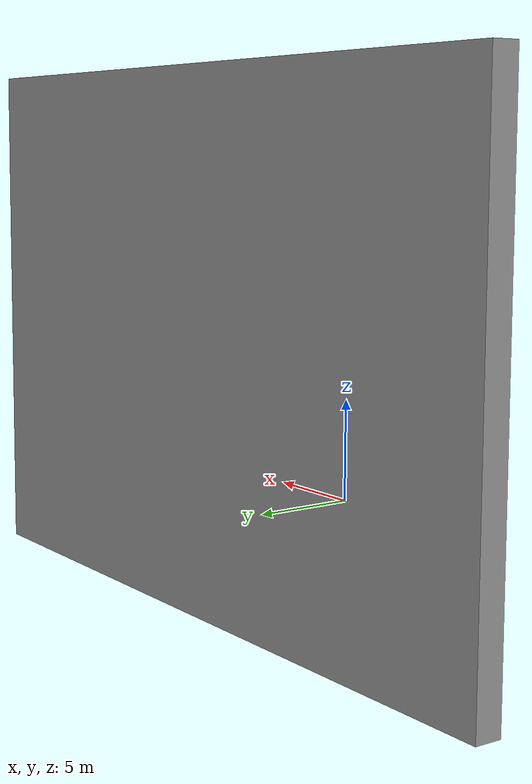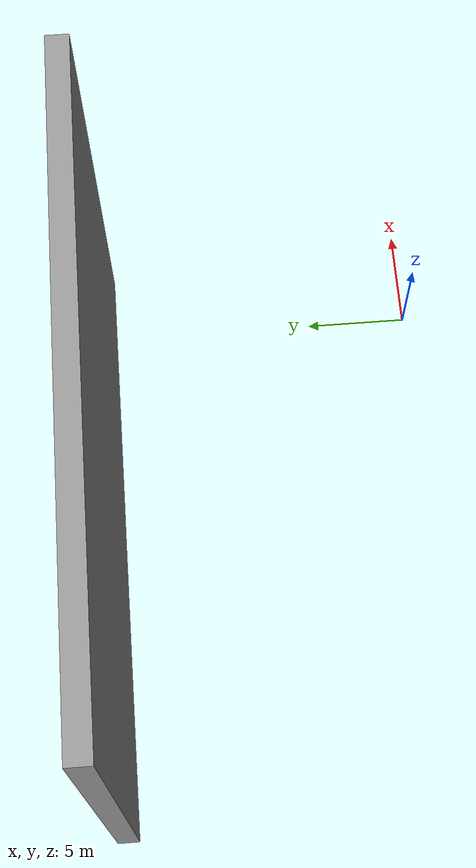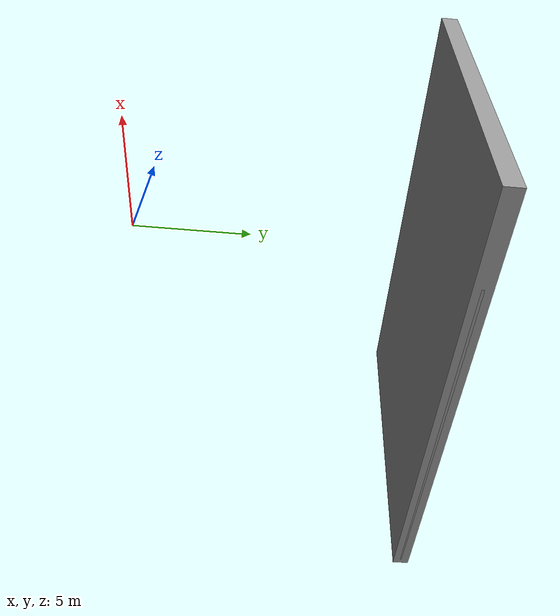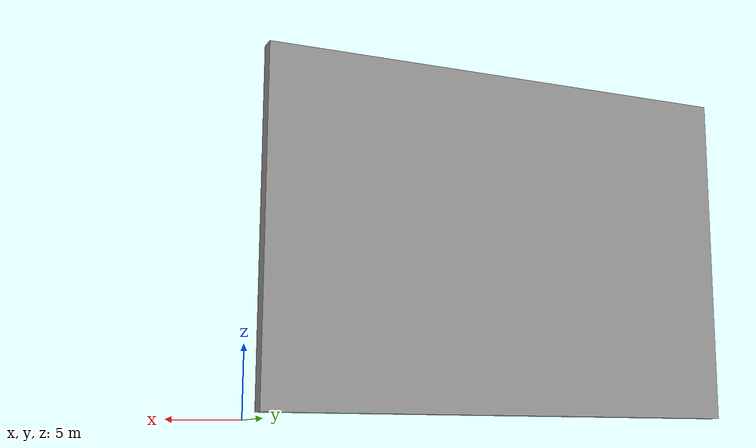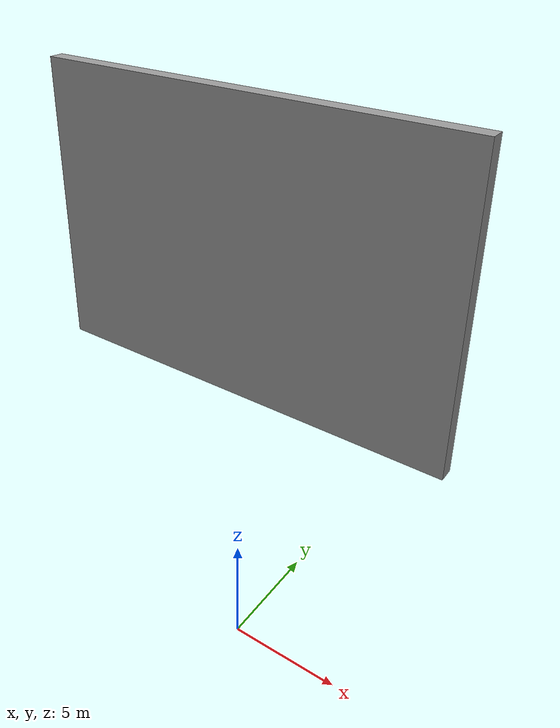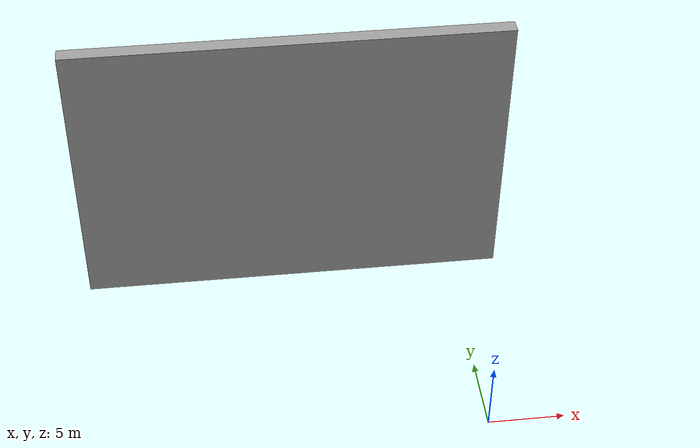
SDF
<?xml version='1.0'?>
<sdf version='1.7'>
  <model name='Untitled'>
    <pose>-11.213 8.0595 0 0 -0 0</pose>
    <link name='Wall_184'>
      <collision name='Wall_184_Collision'>
        <geometry>
          <box>
            <size>23.25 0.15 2.5</size>
          </box>
        </geometry>
        <pose>0 0 1.25 0 -0 0</pose>
      </collision>
      <visual name='Wall_184_Visual'>
        <pose>0 0 1.25 0 -0 0</pose>
        <geometry>
          <box>
            <size>23.25 0.15 2.5</size>
          </box>
        </geometry>
        <material>
          <script>
            <uri>file://media/materials/scripts/gazebo.material</uri>
            <name>Gazebo/Grey</name>
          </script>
          <ambient>1 1 1 1</ambient>
        </material>
        <meta>
          <layer>0</layer>
        </meta>
      </visual>
      <pose>-2.50016 7.55949 0 0 -0 3.14159</pose>
    </link>
    <link name='Wall_185'>
      <collision name='Wall_185_Collision'>
        <geometry>
          <box>
            <size>29.0997 1 20</size>
          </box>
        </geometry>
        <pose>0 0 10 0 -0 0</pose>
      </collision>
      <visual name='Wall_185_Visual'>
        <pose>0 0 10 0 -0 0</pose>
        <geometry>
          <box>
            <size>29.0997 1 20</size>
          </box>
        </geometry>
        <material>
          <script>
            <uri>file://media/materials/scripts/gazebo.material</uri>
            <name>Gazebo/Grey</name>
          </script>
          <ambient>1 1 1 1</ambient>
        </material>
        <meta>
          <layer>0</layer>
        </meta>
      </visual>
      <pose>-0 7.5595 0 0 -0 0</pose>
    </link>
    <static>1</static>
  </model>
</sdf>
